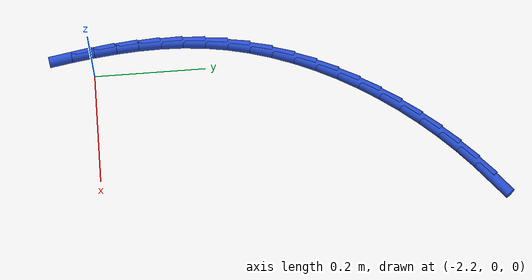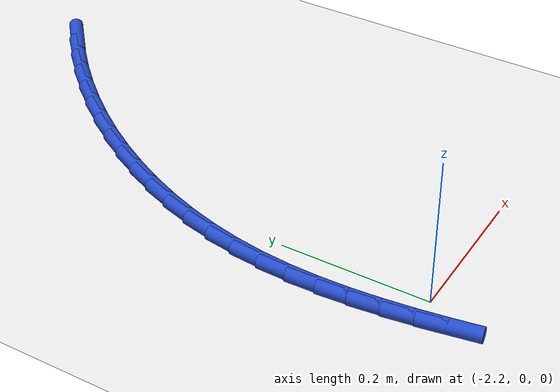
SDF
<sdf version="1.6">
 <world name="default">
  <model name="ground_plane">
   <static>1</static>
   <link name="link">
    <collision name="collision">
     <geometry><plane><normal>0 0 1</normal><size>100 100</size></plane></geometry>
     <surface><friction><ode><mu>100</mu><mu2>50</mu2></ode></friction></surface>
    </collision>
    <visual name="visual">
     <cast_shadows>0</cast_shadows>
     <geometry><plane><normal>0 0 1</normal><size>100 100</size></plane></geometry>
     <material>
      <script><uri>file://media/materials/scripts/gazebo.material</uri><name>Gazebo/WhiteGlow</name></script>
     </material>
    </visual>
   </link>
  </model>
  <model name="line">
   <link name="link_63">
    <pose>-1.9505917627675937 0.6981506303586363 0.01 0 1.57 0.6976095394698779</pose>
    <collision name="collision">
     <geometry><cylinder><radius>0.01</radius><length>0.08</length></cylinder></geometry>
    </collision>
    <visual name="visual">
     <material>
      <script><name>Gazebo/Blue</name><uri>file://media/materials/scripts/gazebo.material</uri></script>
     </material>
     <geometry><cylinder><radius>0.01</radius><length>0.08</length></cylinder></geometry>
    </visual>
   </link>
   <link name="link_64">
    <pose>-1.983209260358998 0.6708103107928938 0.01 0 1.57 0.7477035155843117</pose>
    <collision name="collision">
     <geometry><cylinder><radius>0.01</radius><length>0.08</length></cylinder></geometry>
    </collision>
    <visual name="visual">
     <material>
      <script><name>Gazebo/Blue</name><uri>file://media/materials/scripts/gazebo.material</uri></script>
     </material>
     <geometry><cylinder><radius>0.01</radius><length>0.08</length></cylinder></geometry>
    </visual>
   </link>
   <link name="link_65">
    <pose>-2.014569545200757 0.6417294146675757 0.01 0 1.57 0.7972665981418684</pose>
    <collision name="collision">
     <geometry><cylinder><radius>0.01</radius><length>0.08</length></cylinder></geometry>
    </collision>
    <visual name="visual">
     <material>
      <script><name>Gazebo/Blue</name><uri>file://media/materials/scripts/gazebo.material</uri></script>
     </material>
     <geometry><cylinder><radius>0.01</radius><length>0.08</length></cylinder></geometry>
    </visual>
   </link>
   <link name="link_66">
    <pose>-2.0445437907644965 0.6110350943788135 0.01 0 1.57 0.8466869745176493</pose>
    <collision name="collision">
     <geometry><cylinder><radius>0.01</radius><length>0.08</length></cylinder></geometry>
    </collision>
    <visual name="visual">
     <material>
      <script><name>Gazebo/Blue</name><uri>file://media/materials/scripts/gazebo.material</uri></script>
     </material>
     <geometry><cylinder><radius>0.01</radius><length>0.08</length></cylinder></geometry>
    </visual>
   </link>
   <link name="link_67">
    <pose>-2.073003170521842 0.5788545023227392 0.01 0 1.57 0.8963478206045298</pose>
    <collision name="collision">
     <geometry><cylinder><radius>0.01</radius><length>0.08</length></cylinder></geometry>
    </collision>
    <visual name="visual">
     <material>
      <script><name>Gazebo/Blue</name><uri>file://media/materials/scripts/gazebo.material</uri></script>
     </material>
     <geometry><cylinder><radius>0.01</radius><length>0.08</length></cylinder></geometry>
    </visual>
   </link>
   <link name="link_68">
    <pose>-2.0998188579444186 0.5453147908954833 0.01 0 1.57 0.9466300974054627</pose>
    <collision name="collision">
     <geometry><cylinder><radius>0.01</radius><length>0.08</length></cylinder></geometry>
    </collision>
    <visual name="visual">
     <material>
      <script><name>Gazebo/Blue</name><uri>file://media/materials/scripts/gazebo.material</uri></script>
     </material>
     <geometry><cylinder><radius>0.01</radius><length>0.08</length></cylinder></geometry>
    </visual>
   </link>
   <link name="link_69">
    <pose>-2.1248620265038527 0.510543112493178 0.01 0 1.57 0.9979148447080812</pose>
    <collision name="collision">
     <geometry><cylinder><radius>0.01</radius><length>0.08</length></cylinder></geometry>
    </collision>
    <visual name="visual">
     <material>
      <script><name>Gazebo/Blue</name><uri>file://media/materials/scripts/gazebo.material</uri></script>
     </material>
     <geometry><cylinder><radius>0.01</radius><length>0.08</length></cylinder></geometry>
    </visual>
   </link>
   <link name="link_70">
    <pose>-2.148003849671769 0.4746666195119546 0.01 0 1.57 1.0505844690851713</pose>
    <collision name="collision">
     <geometry><cylinder><radius>0.01</radius><length>0.08</length></cylinder></geometry>
    </collision>
    <visual name="visual">
     <material>
      <script><name>Gazebo/Blue</name><uri>file://media/materials/scripts/gazebo.material</uri></script>
     </material>
     <geometry><cylinder><radius>0.01</radius><length>0.08</length></cylinder></geometry>
    </visual>
   </link>
   <link name="link_71">
    <pose>-2.1691155009197938 0.4378124643479443 0.01 0 1.57 1.1050224340860124</pose>
    <collision name="collision">
     <geometry><cylinder><radius>0.01</radius><length>0.08</length></cylinder></geometry>
    </collision>
    <visual name="visual">
     <material>
      <script><name>Gazebo/Blue</name><uri>file://media/materials/scripts/gazebo.material</uri></script>
     </material>
     <geometry><cylinder><radius>0.01</radius><length>0.08</length></cylinder></geometry>
    </visual>
   </link>
   <link name="link_72">
    <pose>-2.1880681537195517 0.40010779939727886 0.01 0 1.57 1.1616106235452164</pose>
    <collision name="collision">
     <geometry><cylinder><radius>0.01</radius><length>0.08</length></cylinder></geometry>
    </collision>
    <visual name="visual">
     <material>
      <script><name>Gazebo/Blue</name><uri>file://media/materials/scripts/gazebo.material</uri></script>
     </material>
     <geometry><cylinder><radius>0.01</radius><length>0.08</length></cylinder></geometry>
    </visual>
   </link>
   <link name="link_73">
    <pose>-2.20473298154267 0.36167977705609 0.01 0 1.57 1.220723487088562</pose>
    <collision name="collision">
     <geometry><cylinder><radius>0.01</radius><length>0.08</length></cylinder></geometry>
    </collision>
    <visual name="visual">
     <material>
      <script><name>Gazebo/Blue</name><uri>file://media/materials/scripts/gazebo.material</uri></script>
     </material>
     <geometry><cylinder><radius>0.01</radius><length>0.08</length></cylinder></geometry>
    </visual>
   </link>
   <link name="link_74">
    <pose>-2.2189811578607728 0.3226555497205083 0.01 0 1.57 1.2827179352702447</pose>
    <collision name="collision">
     <geometry><cylinder><radius>0.01</radius><length>0.08</length></cylinder></geometry>
    </collision>
    <visual name="visual">
     <material>
      <script><name>Gazebo/Blue</name><uri>file://media/materials/scripts/gazebo.material</uri></script>
     </material>
     <geometry><cylinder><radius>0.01</radius><length>0.08</length></cylinder></geometry>
    </visual>
   </link>
   <link name="link_75">
    <pose>-2.230683856145486 0.28316226978666625 0.01 0 1.57 1.347917912500861</pose>
    <collision name="collision">
     <geometry><cylinder><radius>0.01</radius><length>0.08</length></cylinder></geometry>
    </collision>
    <visual name="visual">
     <material>
      <script><name>Gazebo/Blue</name><uri>file://media/materials/scripts/gazebo.material</uri></script>
     </material>
     <geometry><cylinder><radius>0.01</radius><length>0.08</length></cylinder></geometry>
    </visual>
   </link>
   <link name="link_76">
    <pose>-2.2397122498684356 0.24332708965069474 0.01 0 1.57 1.4161625204559154</pose>
    <collision name="collision">
     <geometry><cylinder><radius>0.01</radius><length>0.08</length></cylinder></geometry>
    </collision>
    <visual name="visual">
     <material>
      <script><name>Gazebo/Blue</name><uri>file://media/materials/scripts/gazebo.material</uri></script>
     </material>
     <geometry><cylinder><radius>0.01</radius><length>0.08</length></cylinder></geometry>
    </visual>
   </link>
   <link name="link_77">
    <pose>-2.245956122415239 0.2032709974233461 0.01 0 1.57 1.4822682021410922</pose>
    <collision name="collision">
     <geometry><cylinder><radius>0.01</radius><length>0.08</length></cylinder></geometry>
    </collision>
    <visual name="visual">
     <material>
      <script><name>Gazebo/Blue</name><uri>file://media/materials/scripts/gazebo.material</uri></script>
     </material>
     <geometry><cylinder><radius>0.01</radius><length>0.08</length></cylinder></geometry>
    </visual>
   </link>
   <link name="link_78">
    <pose>-2.2495268915663678 0.16304156778314713 0.01 0 1.57 1.542226604287033</pose>
    <collision name="collision">
     <geometry><cylinder><radius>0.01</radius><length>0.08</length></cylinder></geometry>
    </collision>
    <visual name="visual">
     <material>
      <script><name>Gazebo/Blue</name><uri>file://media/materials/scripts/gazebo.material</uri></script>
     </material>
     <geometry><cylinder><radius>0.01</radius><length>0.08</length></cylinder></geometry>
    </visual>
   </link>
   <link name="link_79">
    <pose>-2.2506815197163714 0.12263816569970688 0.01 0 1.57 -1.5461084984270868</pose>
    <collision name="collision">
     <geometry><cylinder><radius>0.01</radius><length>0.08</length></cylinder></geometry>
    </collision>
    <visual name="visual">
     <material>
      <script><name>Gazebo/Blue</name><uri>file://media/materials/scripts/gazebo.material</uri></script>
     </material>
     <geometry><cylinder><radius>0.01</radius><length>0.08</length></cylinder></geometry>
    </visual>
   </link>
   <link name="link_80">
    <pose>-2.2496795124052733 0.08205931375967533 0.01 0 1.57 -1.4997815626114601</pose>
    <collision name="collision">
     <geometry><cylinder><radius>0.01</radius><length>0.08</length></cylinder></geometry>
    </collision>
    <visual name="visual">
     <material>
      <script><name>Gazebo/Blue</name><uri>file://media/materials/scripts/gazebo.material</uri></script>
     </material>
     <geometry><cylinder><radius>0.01</radius><length>0.08</length></cylinder></geometry>
    </visual>
   </link>
   <link name="link_81">
    <pose>-2.2467803751730937 0.04130353454970151 0.01 0 1.57 -1.4604161693518367</pose>
    <collision name="collision">
     <geometry><cylinder><radius>0.01</radius><length>0.08</length></cylinder></geometry>
    </collision>
    <visual name="visual">
     <material>
      <script><name>Gazebo/Blue</name><uri>file://media/materials/scripts/gazebo.material</uri></script>
     </material>
     <geometry><cylinder><radius>0.01</radius><length>0.08</length></cylinder></geometry>
    </visual>
   </link>
   <link name="link_82">
    <pose>-2.2422436135598547 0.0003693506564341961 0.01 0 1.57 -1.427911584354208</pose>
    <collision name="collision">
     <geometry><cylinder><radius>0.01</radius><length>0.08</length></cylinder></geometry>
    </collision>
    <visual name="visual">
     <material>
      <script><name>Gazebo/Blue</name><uri>file://media/materials/scripts/gazebo.material</uri></script>
     </material>
     <geometry><cylinder><radius>0.01</radius><length>0.08</length></cylinder></geometry>
    </visual>
   </link>
   <link name="link_83">
    <pose>-2.2363287331055774 -0.04074471533347654 0.01 0 1.57 -1.4020938356808244</pose>
    <collision name="collision">
     <geometry><cylinder><radius>0.01</radius><length>0.08</length></cylinder></geometry>
    </collision>
    <visual name="visual">
     <material>
      <script><name>Gazebo/Blue</name><uri>file://media/materials/scripts/gazebo.material</uri></script>
     </material>
     <geometry><cylinder><radius>0.01</radius><length>0.08</length></cylinder></geometry>
    </visual>
   </link>
  </model>
 </world>
</sdf>
